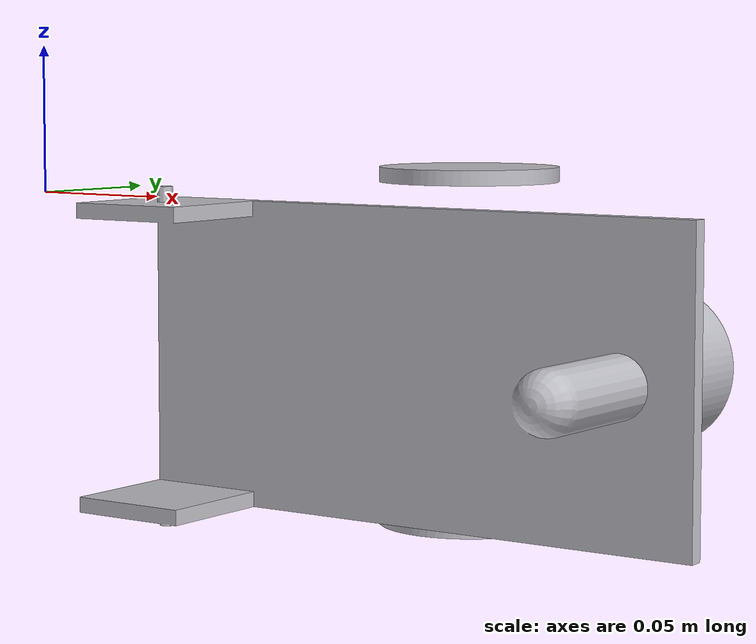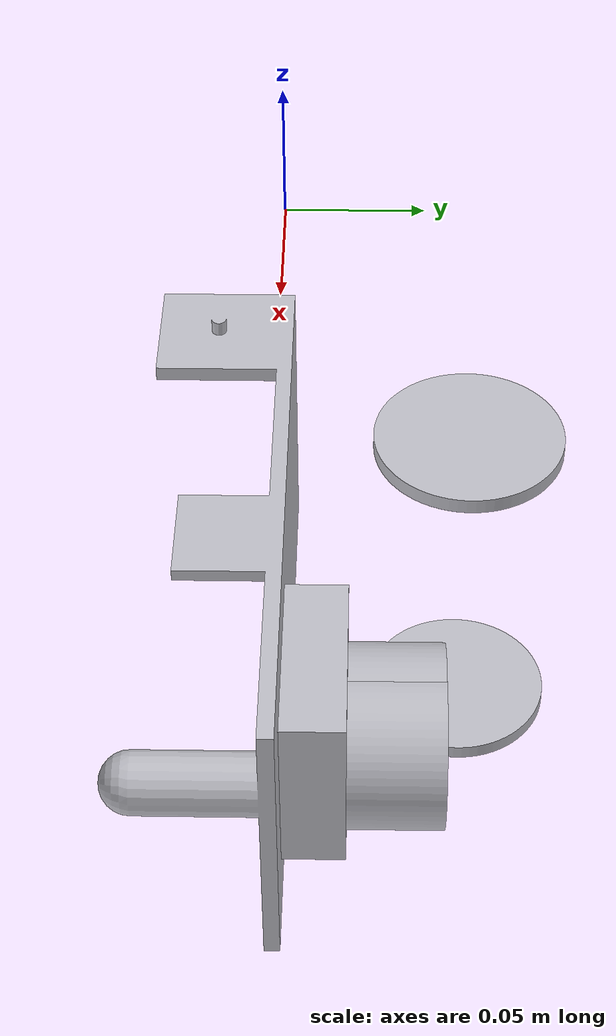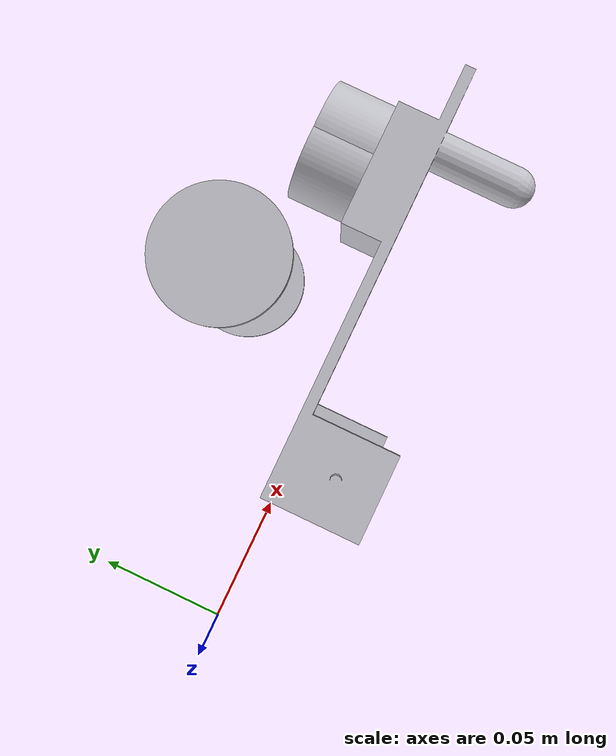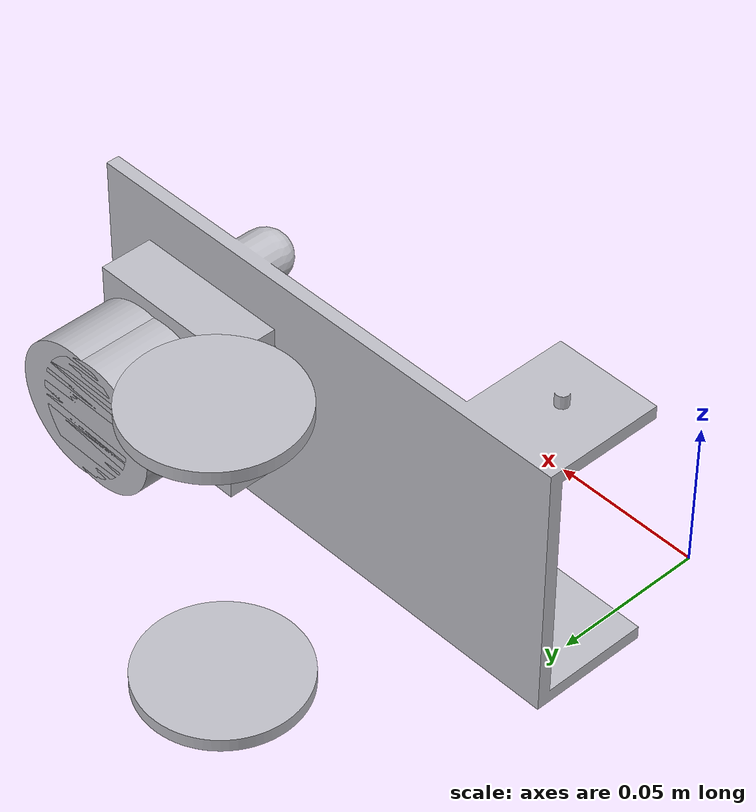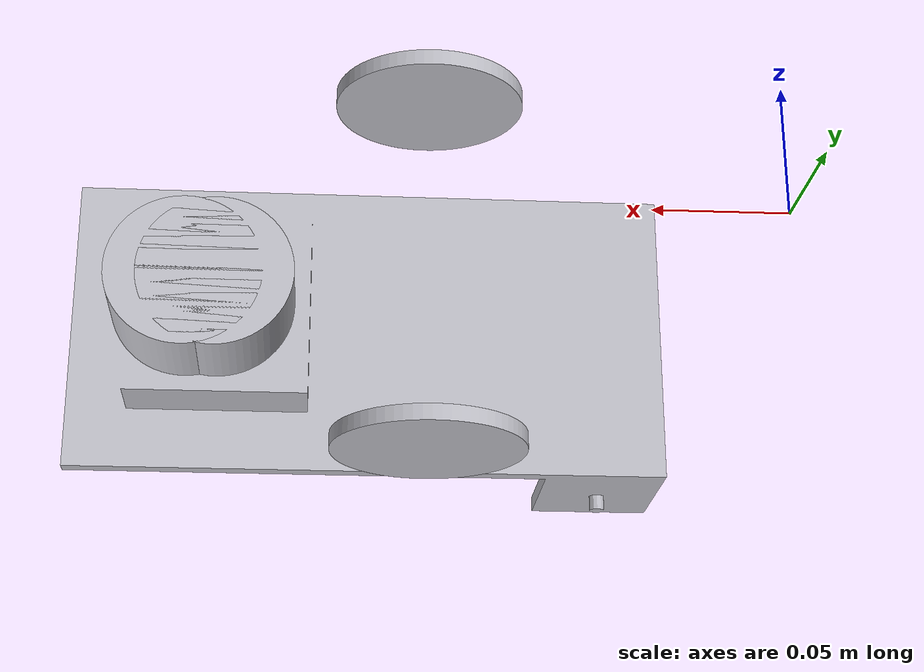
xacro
<?xml version="1.0" ?>
<robot name="task" xmlns:xacro="http://www.ros.org/wiki/xacro">

<xacro:include filename="$(find task_description)/urdf/materials.xacro" />
<xacro:include filename="$(find task_description)/urdf/task.trans" />
<xacro:include filename="$(find task_description)/urdf/task.gazebo" />
<link name="base_link">
  <inertial>
    <origin xyz="0.14738066828855406 -0.003185796874806759 -0.050000000000000044" rpy="0 0 0"/>
    <mass value="1.0272283547721792"/>
    <inertia ixx="0.001093" iyy="0.004874" izz="0.004077" ixy="-2e-05" iyz="-0.0" ixz="0.0"/>
  </inertial>
  <visual>
    <origin xyz="0 0 0" rpy="0 0 0"/>
    <geometry>
      <mesh filename="package://task_description/meshes/base_link.stl" scale="0.001 0.001 0.001"/>
    </geometry>
    <material name="silver"/>
  </visual>
  <collision>
    <origin xyz="0 0 0" rpy="0 0 0"/>
    <geometry>
      <mesh filename="package://task_description/meshes/base_link.stl" scale="0.001 0.001 0.001"/>
    </geometry>
  </collision>
</link>

<link name="rightwheel_1">
  <inertial>
    <origin xyz="2.7755575615628914e-17 -6.938893903907228e-18 -0.0025000000000000022" rpy="0 0 0"/>
    <mass value="0.1109767604880594"/>
    <inertia ixx="2.5e-05" iyy="2.5e-05" izz="5e-05" ixy="-0.0" iyz="-0.0" ixz="0.0"/>
  </inertial>
  <visual>
    <origin xyz="-0.07 0.02 0.105" rpy="0 0 0"/>
    <geometry>
      <mesh filename="package://task_description/meshes/rightwheel_1.stl" scale="0.001 0.001 0.001"/>
    </geometry>
    <material name="silver"/>
  </visual>
  <collision>
    <origin xyz="-0.07 0.02 0.105" rpy="0 0 0"/>
    <geometry>
      <mesh filename="package://task_description/meshes/rightwheel_1.stl" scale="0.001 0.001 0.001"/>
    </geometry>
  </collision>
</link>

<link name="leftwheel_1">
  <inertial>
    <origin xyz="1.3877787807814457e-17 -6.938893903907228e-18 0.0025000000000000014" rpy="0 0 0"/>
    <mass value="0.1109767604880594"/>
    <inertia ixx="2.5e-05" iyy="2.5e-05" izz="5e-05" ixy="-0.0" iyz="0.0" ixz="0.0"/>
  </inertial>
  <visual>
    <origin xyz="-0.07 0.02 -0.005" rpy="0 0 0"/>
    <geometry>
      <mesh filename="package://task_description/meshes/leftwheel_1.stl" scale="0.001 0.001 0.001"/>
    </geometry>
    <material name="silver"/>
  </visual>
  <collision>
    <origin xyz="-0.07 0.02 -0.005" rpy="0 0 0"/>
    <geometry>
      <mesh filename="package://task_description/meshes/leftwheel_1.stl" scale="0.001 0.001 0.001"/>
    </geometry>
  </collision>
</link>

<link name="lidar_1">
  <inertial>
    <origin xyz="-0.03999999999999995 0.008919812957238038 0.0" rpy="0 0 0"/>
    <mass value="0.48439014073208936"/>
    <inertia ixx="0.000144" iyy="0.00026" izz="0.000144" ixy="0.0" iyz="-0.0" ixz="0.0"/>
  </inertial>
  <visual>
    <origin xyz="-0.25 -0.005 0.05" rpy="0 0 0"/>
    <geometry>
      <mesh filename="package://task_description/meshes/lidar_1.stl" scale="0.001 0.001 0.001"/>
    </geometry>
    <material name="silver"/>
  </visual>
  <collision>
    <origin xyz="-0.25 -0.005 0.05" rpy="0 0 0"/>
    <geometry>
      <mesh filename="package://task_description/meshes/lidar_1.stl" scale="0.001 0.001 0.001"/>
    </geometry>
  </collision>
</link>

<link name="lidar__1__1">
  <inertial>
    <origin xyz="0.0 0.015 0.0" rpy="0 0 0"/>
    <mass value="0.46240316870024756"/>
    <inertia ixx="0.000107" iyy="0.000145" izz="0.000107" ixy="0.0" iyz="0.0" ixz="0.0"/>
  </inertial>
  <visual>
    <origin xyz="-0.21 -0.025 0.05" rpy="0 0 0"/>
    <geometry>
      <mesh filename="package://task_description/meshes/lidar__1__1.stl" scale="0.001 0.001 0.001"/>
    </geometry>
    <material name="silver"/>
  </visual>
  <collision>
    <origin xyz="-0.21 -0.025 0.05" rpy="0 0 0"/>
    <geometry>
      <mesh filename="package://task_description/meshes/lidar__1__1.stl" scale="0.001 0.001 0.001"/>
    </geometry>
  </collision>
</link>

<joint name="Rev1" type="continuous">
  <origin xyz="0.07 -0.02 -0.105" rpy="0 0 0"/>
  <parent link="base_link"/>
  <child link="rightwheel_1"/>
  <axis xyz="0.0 0.0 1.0"/>
</joint>

<joint name="Rev2" type="continuous">
  <origin xyz="0.07 -0.02 0.005" rpy="0 0 0"/>
  <parent link="base_link"/>
  <child link="leftwheel_1"/>
  <axis xyz="0.0 0.0 1.0"/>
</joint>

<joint name="Rigid3" type="fixed">
  <origin xyz="0.25 0.005 -0.05" rpy="0 0 0"/>
  <parent link="base_link"/>
  <child link="lidar_1"/>
</joint>

<joint name="Rev4" type="continuous">
  <origin xyz="-0.04 0.02 0.0" rpy="0 0 0"/>
  <parent link="lidar_1"/>
  <child link="lidar__1__1"/>
  <axis xyz="0.0 1.0 0.0"/>
</joint>

</robot>

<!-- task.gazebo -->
<robot name="task" xmlns:xacro="http://www.ros.org/wiki/xacro" >

<xacro:property name="body_color" value="Gazebo/Silver" />

<gazebo>
  <plugin name="control" filename="libgazebo_ros_control.so"/>
</gazebo>
<gazebo reference="base_link">
  <material>${body_color}</material>
  <mu1>0.2</mu1>
  <mu2>0.2</mu2>
  <selfCollide>true</selfCollide>
  <gravity>true</gravity>
</gazebo>

<gazebo reference="rightwheel_1">
  <material>${body_color}</material>
  <mu1>0.2</mu1>
  <mu2>0.2</mu2>
  <selfCollide>true</selfCollide>
</gazebo>

<gazebo reference="leftwheel_1">
  <material>${body_color}</material>
  <mu1>0.2</mu1>
  <mu2>0.2</mu2>
  <selfCollide>true</selfCollide>
</gazebo>

<gazebo reference="lidar__1__1">
  <material>${body_color}</material>
  <mu1>0.2</mu1>
  <mu2>0.2</mu2>
  <selfCollide>true</selfCollide>
</gazebo>

</robot>
